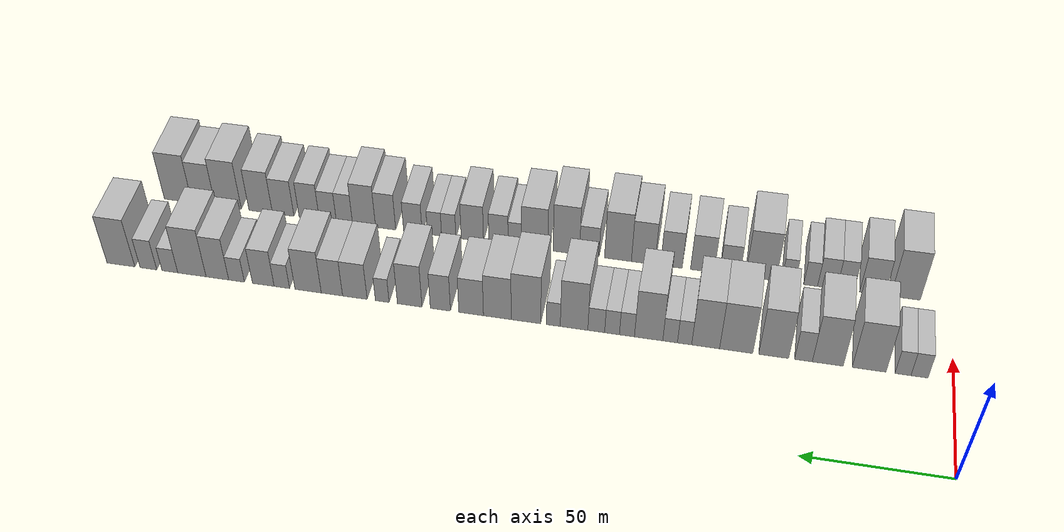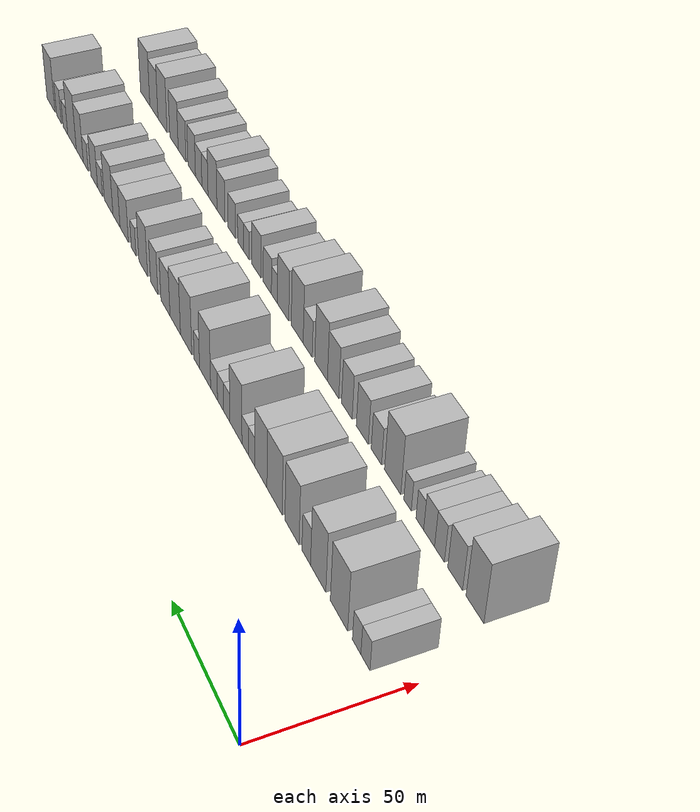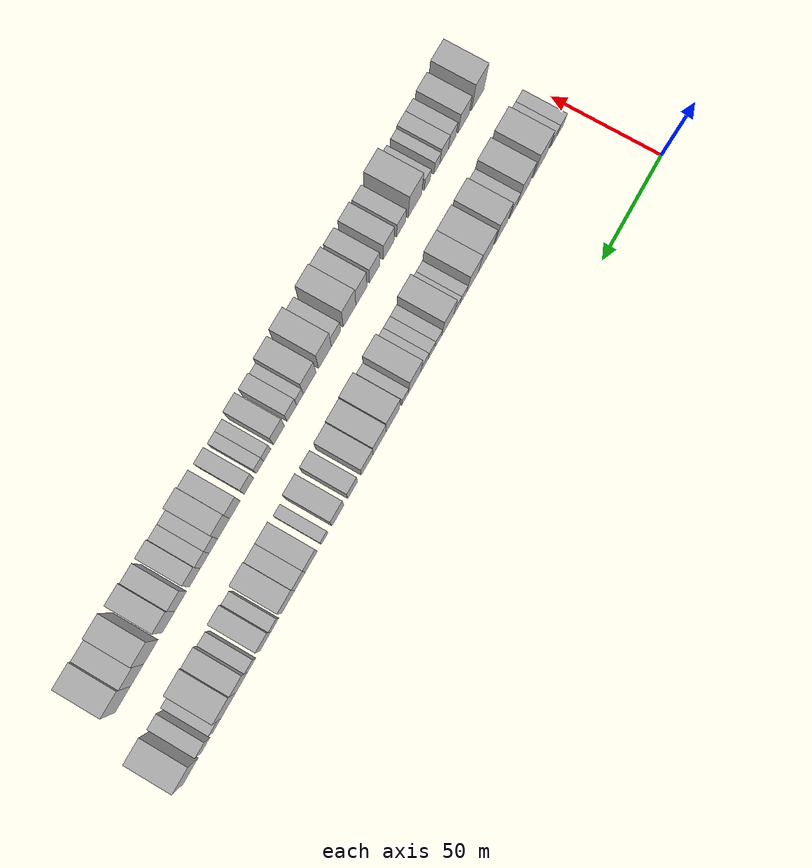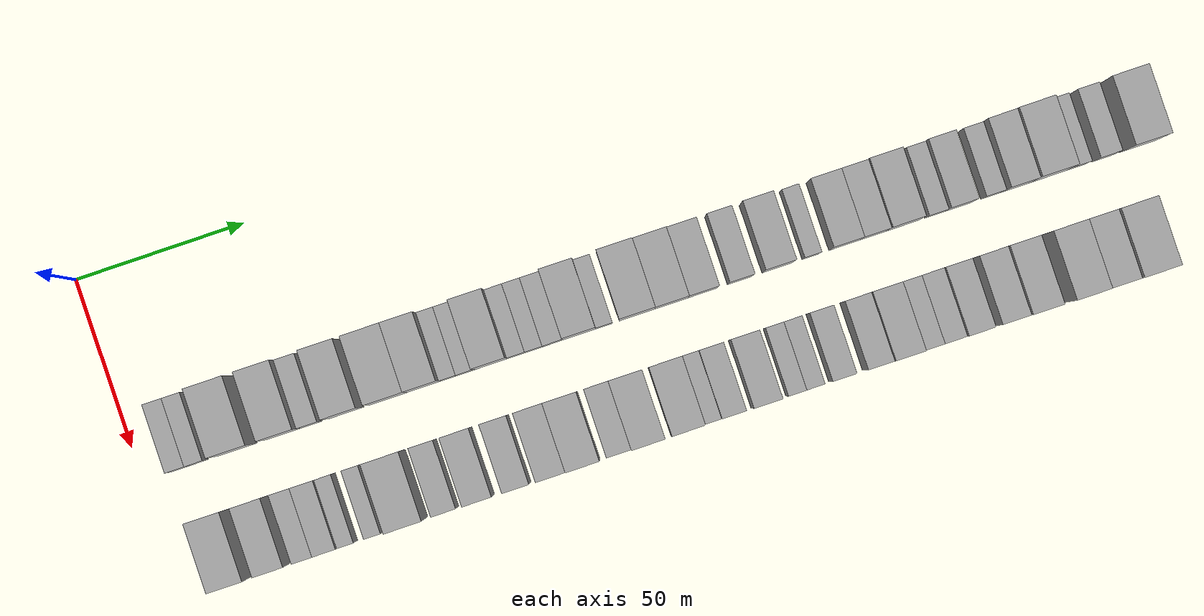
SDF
<sdf version="1.6">
 <world name="default">
  <model name="building_34">
   <static>1</static>
   <pose>50.0000 11.3781 0 0.000000 0.000000 0.000000</pose>
   <link name="link">
    <pose>0 0 6.00 0 0 0</pose>
    <collision name="collision"><geometry><box><size>20.0000 5.6528 12.0000</size></box></geometry></collision>
    <visual name="visual">
     <cast_shadows>0</cast_shadows>
     <geometry><box><size>20.0000 5.6528 12.0000</size></box></geometry>
     <material>
      <script>
       <uri>model://HANNAS_wall/materials/scripts</uri>
       <uri>model://HANNAS_wall/materials/textures</uri>
       <name>vrc/HANNAS_wall</name>
      </script>
     </material>
    </visual>
   </link>
  </model>
  <model name="building_35">
   <static>1</static>
   <pose>50.0000 16.8766 0 0.000000 0.000000 0.000000</pose>
   <link name="link">
    <pose>0 0 6.00 0 0 0</pose>
    <collision name="collision"><geometry><box><size>20.0000 5.3441 12.0000</size></box></geometry></collision>
    <visual name="visual">
     <cast_shadows>0</cast_shadows>
     <geometry><box><size>20.0000 5.3441 12.0000</size></box></geometry>
     <material>
      <script>
       <uri>model://HANNAS_wall/materials/scripts</uri>
       <uri>model://HANNAS_wall/materials/textures</uri>
       <name>vrc/HANNAS_wall</name>
      </script>
     </material>
    </visual>
   </link>
  </model>
  <model name="building_36">
   <static>1</static>
   <pose>50.0000 28.2322 0 0.000000 0.000000 0.000000</pose>
   <link name="link">
    <pose>0 0 12.00 0 0 0</pose>
    <collision name="collision"><geometry><box><size>20.0000 11.3671 24.0000</size></box></geometry></collision>
    <visual name="visual">
     <cast_shadows>0</cast_shadows>
     <geometry><box><size>20.0000 11.3671 24.0000</size></box></geometry>
     <material>
      <script>
       <uri>model://HANNAS_wall/materials/scripts</uri>
       <uri>model://HANNAS_wall/materials/textures</uri>
       <name>vrc/HANNAS_wall</name>
      </script>
     </material>
    </visual>
   </link>
  </model>
  <model name="building_37">
   <static>1</static>
   <pose>50.0000 42.1491 0 0.000000 0.000000 0.000000</pose>
   <link name="link">
    <pose>0 0 12.00 0 0 0</pose>
    <collision name="collision"><geometry><box><size>20.0000 10.4667 24.0000</size></box></geometry></collision>
    <visual name="visual">
     <cast_shadows>0</cast_shadows>
     <geometry><box><size>20.0000 10.4667 24.0000</size></box></geometry>
     <material>
      <script>
       <uri>model://HANNAS_wall/materials/scripts</uri>
       <uri>model://HANNAS_wall/materials/textures</uri>
       <name>vrc/HANNAS_wall</name>
      </script>
     </material>
    </visual>
   </link>
  </model>
  <model name="building_38">
   <static>1</static>
   <pose>50.0000 50.3869 0 0.000000 0.000000 0.000000</pose>
   <link name="link">
    <pose>0 0 7.50 0 0 0</pose>
    <collision name="collision"><geometry><box><size>20.0000 6.0088 15.0000</size></box></geometry></collision>
    <visual name="visual">
     <cast_shadows>0</cast_shadows>
     <geometry><box><size>20.0000 6.0088 15.0000</size></box></geometry>
     <material>
      <script>
       <uri>model://HANNAS_wall/materials/scripts</uri>
       <uri>model://HANNAS_wall/materials/textures</uri>
       <name>vrc/HANNAS_wall</name>
      </script>
     </material>
    </visual>
   </link>
  </model>
  <model name="building_39">
   <static>1</static>
   <pose>50.0000 60.5016 0 0.000000 0.000000 0.000000</pose>
   <link name="link">
    <pose>0 0 12.00 0 0 0</pose>
    <collision name="collision"><geometry><box><size>20.0000 10.2207 24.0000</size></box></geometry></collision>
    <visual name="visual">
     <cast_shadows>0</cast_shadows>
     <geometry><box><size>20.0000 10.2207 24.0000</size></box></geometry>
     <material>
      <script>
       <uri>model://HANNAS_wall/materials/scripts</uri>
       <uri>model://HANNAS_wall/materials/textures</uri>
       <name>vrc/HANNAS_wall</name>
      </script>
     </material>
    </visual>
   </link>
  </model>
  <model name="building_40">
   <static>1</static>
   <pose>50.0000 73.3194 0 0.000000 0.000000 0.000000</pose>
   <link name="link">
    <pose>0 0 12.00 0 0 0</pose>
    <collision name="collision"><geometry><box><size>20.0000 11.4149 24.0000</size></box></geometry></collision>
    <visual name="visual">
     <cast_shadows>0</cast_shadows>
     <geometry><box><size>20.0000 11.4149 24.0000</size></box></geometry>
     <material>
      <script>
       <uri>model://HANNAS_wall/materials/scripts</uri>
       <uri>model://HANNAS_wall/materials/textures</uri>
       <name>vrc/HANNAS_wall</name>
      </script>
     </material>
    </visual>
   </link>
  </model>
  <model name="building_41">
   <static>1</static>
   <pose>50.0000 83.8355 0 0.000000 0.000000 0.000000</pose>
   <link name="link">
    <pose>0 0 12.00 0 0 0</pose>
    <collision name="collision"><geometry><box><size>20.0000 9.6173 24.0000</size></box></geometry></collision>
    <visual name="visual">
     <cast_shadows>0</cast_shadows>
     <geometry><box><size>20.0000 9.6173 24.0000</size></box></geometry>
     <material>
      <script>
       <uri>model://HANNAS_wall/materials/scripts</uri>
       <uri>model://HANNAS_wall/materials/textures</uri>
       <name>vrc/HANNAS_wall</name>
      </script>
     </material>
    </visual>
   </link>
  </model>
  <model name="building_42">
   <static>1</static>
   <pose>50.0000 91.1085 0 0.000000 0.000000 0.000000</pose>
   <link name="link">
    <pose>0 0 6.00 0 0 0</pose>
    <collision name="collision"><geometry><box><size>20.0000 4.9288 12.0000</size></box></geometry></collision>
    <visual name="visual">
     <cast_shadows>0</cast_shadows>
     <geometry><box><size>20.0000 4.9288 12.0000</size></box></geometry>
     <material>
      <script>
       <uri>model://HANNAS_wall/materials/scripts</uri>
       <uri>model://HANNAS_wall/materials/textures</uri>
       <name>vrc/HANNAS_wall</name>
      </script>
     </material>
    </visual>
   </link>
  </model>
  <model name="building_43">
   <static>1</static>
   <pose>50.0000 96.1095 0 0.000000 0.000000 0.000000</pose>
   <link name="link">
    <pose>0 0 6.00 0 0 0</pose>
    <collision name="collision"><geometry><box><size>20.0000 5.0732 12.0000</size></box></geometry></collision>
    <visual name="visual">
     <cast_shadows>0</cast_shadows>
     <geometry><box><size>20.0000 5.0732 12.0000</size></box></geometry>
     <material>
      <script>
       <uri>model://HANNAS_wall/materials/scripts</uri>
       <uri>model://HANNAS_wall/materials/textures</uri>
       <name>vrc/HANNAS_wall</name>
      </script>
     </material>
    </visual>
   </link>
  </model>
  <model name="building_44">
   <static>1</static>
   <pose>50.0000 103.5776 0 0.000000 0.000000 0.000000</pose>
   <link name="link">
    <pose>0 0 12.00 0 0 0</pose>
    <collision name="collision"><geometry><box><size>20.0000 9.8629 24.0000</size></box></geometry></collision>
    <visual name="visual">
     <cast_shadows>0</cast_shadows>
     <geometry><box><size>20.0000 9.8629 24.0000</size></box></geometry>
     <material>
      <script>
       <uri>model://HANNAS_wall/materials/scripts</uri>
       <uri>model://HANNAS_wall/materials/textures</uri>
       <name>vrc/HANNAS_wall</name>
      </script>
     </material>
    </visual>
   </link>
  </model>
  <model name="building_45">
   <static>1</static>
   <pose>50.0000 111.1293 0 0.000000 0.000000 0.000000</pose>
   <link name="link">
    <pose>0 0 6.00 0 0 0</pose>
    <collision name="collision"><geometry><box><size>20.0000 5.2404 12.0000</size></box></geometry></collision>
    <visual name="visual">
     <cast_shadows>0</cast_shadows>
     <geometry><box><size>20.0000 5.2404 12.0000</size></box></geometry>
     <material>
      <script>
       <uri>model://HANNAS_wall/materials/scripts</uri>
       <uri>model://HANNAS_wall/materials/textures</uri>
       <name>vrc/HANNAS_wall</name>
      </script>
     </material>
    </visual>
   </link>
  </model>
  <model name="building_46">
   <static>1</static>
   <pose>50.0000 116.3357 0 0.000000 0.000000 0.000000</pose>
   <link name="link">
    <pose>0 0 6.00 0 0 0</pose>
    <collision name="collision"><geometry><box><size>20.0000 5.1725 12.0000</size></box></geometry></collision>
    <visual name="visual">
     <cast_shadows>0</cast_shadows>
     <geometry><box><size>20.0000 5.1725 12.0000</size></box></geometry>
     <material>
      <script>
       <uri>model://HANNAS_wall/materials/scripts</uri>
       <uri>model://HANNAS_wall/materials/textures</uri>
       <name>vrc/HANNAS_wall</name>
      </script>
     </material>
    </visual>
   </link>
  </model>
  <model name="building_47">
   <static>1</static>
   <pose>50.0000 121.8743 0 0.000000 0.000000 0.000000</pose>
   <link name="link">
    <pose>0 0 6.00 0 0 0</pose>
    <collision name="collision"><geometry><box><size>20.0000 5.9047 12.0000</size></box></geometry></collision>
    <visual name="visual">
     <cast_shadows>0</cast_shadows>
     <geometry><box><size>20.0000 5.9047 12.0000</size></box></geometry>
     <material>
      <script>
       <uri>model://HANNAS_wall/materials/scripts</uri>
       <uri>model://HANNAS_wall/materials/textures</uri>
       <name>vrc/HANNAS_wall</name>
      </script>
     </material>
    </visual>
   </link>
  </model>
  <model name="building_48">
   <static>1</static>
   <pose>50.0000 129.6928 0 0.000000 0.000000 0.000000</pose>
   <link name="link">
    <pose>0 0 12.00 0 0 0</pose>
    <collision name="collision"><geometry><box><size>20.0000 9.7323 24.0000</size></box></geometry></collision>
    <visual name="visual">
     <cast_shadows>0</cast_shadows>
     <geometry><box><size>20.0000 9.7323 24.0000</size></box></geometry>
     <material>
      <script>
       <uri>model://HANNAS_wall/materials/scripts</uri>
       <uri>model://HANNAS_wall/materials/textures</uri>
       <name>vrc/HANNAS_wall</name>
      </script>
     </material>
    </visual>
   </link>
  </model>
  <model name="building_49">
   <static>1</static>
   <pose>50.0000 137.0227 0 0.000000 0.000000 0.000000</pose>
   <link name="link">
    <pose>0 0 6.00 0 0 0</pose>
    <collision name="collision"><geometry><box><size>20.0000 4.9277 12.0000</size></box></geometry></collision>
    <visual name="visual">
     <cast_shadows>0</cast_shadows>
     <geometry><box><size>20.0000 4.9277 12.0000</size></box></geometry>
     <material>
      <script>
       <uri>model://HANNAS_wall/materials/scripts</uri>
       <uri>model://HANNAS_wall/materials/textures</uri>
       <name>vrc/HANNAS_wall</name>
      </script>
     </material>
    </visual>
   </link>
  </model>
  <model name="building_50">
   <static>1</static>
   <pose>50.0000 146.7251 0 0.000000 0.000000 0.000000</pose>
   <link name="link">
    <pose>0 0 12.00 0 0 0</pose>
    <collision name="collision"><geometry><box><size>20.0000 10.4770 24.0000</size></box></geometry></collision>
    <visual name="visual">
     <cast_shadows>0</cast_shadows>
     <geometry><box><size>20.0000 10.4770 24.0000</size></box></geometry>
     <material>
      <script>
       <uri>model://HANNAS_wall/materials/scripts</uri>
       <uri>model://HANNAS_wall/materials/textures</uri>
       <name>vrc/HANNAS_wall</name>
      </script>
     </material>
    </visual>
   </link>
  </model>
  <model name="building_51">
   <static>1</static>
   <pose>50.0000 156.9101 0 0.000000 0.000000 0.000000</pose>
   <link name="link">
    <pose>0 0 10.50 0 0 0</pose>
    <collision name="collision"><geometry><box><size>20.0000 9.8931 21.0000</size></box></geometry></collision>
    <visual name="visual">
     <cast_shadows>0</cast_shadows>
     <geometry><box><size>20.0000 9.8931 21.0000</size></box></geometry>
     <material>
      <script>
       <uri>model://HANNAS_wall/materials/scripts</uri>
       <uri>model://HANNAS_wall/materials/textures</uri>
       <name>vrc/HANNAS_wall</name>
      </script>
     </material>
    </visual>
   </link>
  </model>
  <model name="building_52">
   <static>1</static>
   <pose>50.0000 166.2737 0 0.000000 0.000000 0.000000</pose>
   <link name="link">
    <pose>0 0 9.00 0 0 0</pose>
    <collision name="collision"><geometry><box><size>20.0000 8.8340 18.0000</size></box></geometry></collision>
    <visual name="visual">
     <cast_shadows>0</cast_shadows>
     <geometry><box><size>20.0000 8.8340 18.0000</size></box></geometry>
     <material>
      <script>
       <uri>model://HANNAS_wall/materials/scripts</uri>
       <uri>model://HANNAS_wall/materials/textures</uri>
       <name>vrc/HANNAS_wall</name>
      </script>
     </material>
    </visual>
   </link>
  </model>
  <model name="building_53">
   <static>1</static>
   <pose>50.0000 177.3260 0 0.000000 0.000000 0.000000</pose>
   <link name="link">
    <pose>0 0 9.00 0 0 0</pose>
    <collision name="collision"><geometry><box><size>20.0000 7.2707 18.0000</size></box></geometry></collision>
    <visual name="visual">
     <cast_shadows>0</cast_shadows>
     <geometry><box><size>20.0000 7.2707 18.0000</size></box></geometry>
     <material>
      <script>
       <uri>model://HANNAS_wall/materials/scripts</uri>
       <uri>model://HANNAS_wall/materials/textures</uri>
       <name>vrc/HANNAS_wall</name>
      </script>
     </material>
    </visual>
   </link>
  </model>
  <model name="building_54">
   <static>1</static>
   <pose>50.0000 188.4269 0 0.000000 0.000000 0.000000</pose>
   <link name="link">
    <pose>0 0 10.50 0 0 0</pose>
    <collision name="collision"><geometry><box><size>20.0000 8.9310 21.0000</size></box></geometry></collision>
    <visual name="visual">
     <cast_shadows>0</cast_shadows>
     <geometry><box><size>20.0000 8.9310 21.0000</size></box></geometry>
     <material>
      <script>
       <uri>model://HANNAS_wall/materials/scripts</uri>
       <uri>model://HANNAS_wall/materials/textures</uri>
       <name>vrc/HANNAS_wall</name>
      </script>
     </material>
    </visual>
   </link>
  </model>
  <model name="building_55">
   <static>1</static>
   <pose>50.0000 198.3898 0 0.000000 0.000000 0.000000</pose>
   <link name="link">
    <pose>0 0 6.00 0 0 0</pose>
    <collision name="collision"><geometry><box><size>20.0000 4.9948 12.0000</size></box></geometry></collision>
    <visual name="visual">
     <cast_shadows>0</cast_shadows>
     <geometry><box><size>20.0000 4.9948 12.0000</size></box></geometry>
     <material>
      <script>
       <uri>model://HANNAS_wall/materials/scripts</uri>
       <uri>model://HANNAS_wall/materials/textures</uri>
       <name>vrc/HANNAS_wall</name>
      </script>
     </material>
    </visual>
   </link>
  </model>
  <model name="building_56">
   <static>1</static>
   <pose>50.0000 208.3783 0 0.000000 0.000000 0.000000</pose>
   <link name="link">
    <pose>0 0 9.00 0 0 0</pose>
    <collision name="collision"><geometry><box><size>20.0000 8.9823 18.0000</size></box></geometry></collision>
    <visual name="visual">
     <cast_shadows>0</cast_shadows>
     <geometry><box><size>20.0000 8.9823 18.0000</size></box></geometry>
     <material>
      <script>
       <uri>model://HANNAS_wall/materials/scripts</uri>
       <uri>model://HANNAS_wall/materials/textures</uri>
       <name>vrc/HANNAS_wall</name>
      </script>
     </material>
    </visual>
   </link>
  </model>
  <model name="building_57">
   <static>1</static>
   <pose>50.0000 216.7896 0 0.000000 0.000000 0.000000</pose>
   <link name="link">
    <pose>0 0 9.00 0 0 0</pose>
    <collision name="collision"><geometry><box><size>20.0000 7.8402 18.0000</size></box></geometry></collision>
    <visual name="visual">
     <cast_shadows>0</cast_shadows>
     <geometry><box><size>20.0000 7.8402 18.0000</size></box></geometry>
     <material>
      <script>
       <uri>model://HANNAS_wall/materials/scripts</uri>
       <uri>model://HANNAS_wall/materials/textures</uri>
       <name>vrc/HANNAS_wall</name>
      </script>
     </material>
    </visual>
   </link>
  </model>
  <model name="building_58">
   <static>1</static>
   <pose>50.0000 225.5620 0 0.000000 0.000000 0.000000</pose>
   <link name="link">
    <pose>0 0 10.50 0 0 0</pose>
    <collision name="collision"><geometry><box><size>20.0000 9.7047 21.0000</size></box></geometry></collision>
    <visual name="visual">
     <cast_shadows>0</cast_shadows>
     <geometry><box><size>20.0000 9.7047 21.0000</size></box></geometry>
     <material>
      <script>
       <uri>model://HANNAS_wall/materials/scripts</uri>
       <uri>model://HANNAS_wall/materials/textures</uri>
       <name>vrc/HANNAS_wall</name>
      </script>
     </material>
    </visual>
   </link>
  </model>
  <model name="building_59">
   <static>1</static>
   <pose>50.0000 235.2717 0 0.000000 0.000000 0.000000</pose>
   <link name="link">
    <pose>0 0 6.00 0 0 0</pose>
    <collision name="collision"><geometry><box><size>20.0000 5.7147 12.0000</size></box></geometry></collision>
    <visual name="visual">
     <cast_shadows>0</cast_shadows>
     <geometry><box><size>20.0000 5.7147 12.0000</size></box></geometry>
     <material>
      <script>
       <uri>model://HANNAS_wall/materials/scripts</uri>
       <uri>model://HANNAS_wall/materials/textures</uri>
       <name>vrc/HANNAS_wall</name>
      </script>
     </material>
    </visual>
   </link>
  </model>
  <model name="building_60">
   <static>1</static>
   <pose>50.0000 242.1618 0 0.000000 0.000000 0.000000</pose>
   <link name="link">
    <pose>0 0 9.00 0 0 0</pose>
    <collision name="collision"><geometry><box><size>20.0000 8.0655 18.0000</size></box></geometry></collision>
    <visual name="visual">
     <cast_shadows>0</cast_shadows>
     <geometry><box><size>20.0000 8.0655 18.0000</size></box></geometry>
     <material>
      <script>
       <uri>model://HANNAS_wall/materials/scripts</uri>
       <uri>model://HANNAS_wall/materials/textures</uri>
       <name>vrc/HANNAS_wall</name>
      </script>
     </material>
    </visual>
   </link>
  </model>
  <model name="building_61">
   <static>1</static>
   <pose>50.0000 252.1218 0 0.000000 0.000000 0.000000</pose>
   <link name="link">
    <pose>0 0 6.00 0 0 0</pose>
    <collision name="collision"><geometry><box><size>20.0000 5.8545 12.0000</size></box></geometry></collision>
    <visual name="visual">
     <cast_shadows>0</cast_shadows>
     <geometry><box><size>20.0000 5.8545 12.0000</size></box></geometry>
     <material>
      <script>
       <uri>model://HANNAS_wall/materials/scripts</uri>
       <uri>model://HANNAS_wall/materials/textures</uri>
       <name>vrc/HANNAS_wall</name>
      </script>
     </material>
    </visual>
   </link>
  </model>
  <model name="building_62">
   <static>1</static>
   <pose>50.0000 259.2946 0 0.000000 0.000000 0.000000</pose>
   <link name="link">
    <pose>0 0 10.50 0 0 0</pose>
    <collision name="collision"><geometry><box><size>20.0000 8.4913 21.0000</size></box></geometry></collision>
    <visual name="visual">
     <cast_shadows>0</cast_shadows>
     <geometry><box><size>20.0000 8.4913 21.0000</size></box></geometry>
     <material>
      <script>
       <uri>model://HANNAS_wall/materials/scripts</uri>
       <uri>model://HANNAS_wall/materials/textures</uri>
       <name>vrc/HANNAS_wall</name>
      </script>
     </material>
    </visual>
   </link>
  </model>
  <model name="building_63">
   <static>1</static>
   <pose>50.0000 268.8690 0 0.000000 0.000000 0.000000</pose>
   <link name="link">
    <pose>0 0 12.00 0 0 0</pose>
    <collision name="collision"><geometry><box><size>20.0000 10.6575 24.0000</size></box></geometry></collision>
    <visual name="visual">
     <cast_shadows>0</cast_shadows>
     <geometry><box><size>20.0000 10.6575 24.0000</size></box></geometry>
     <material>
      <script>
       <uri>model://HANNAS_wall/materials/scripts</uri>
       <uri>model://HANNAS_wall/materials/textures</uri>
       <name>vrc/HANNAS_wall</name>
      </script>
     </material>
    </visual>
   </link>
  </model>
  <model name="building_64">
   <static>1</static>
   <pose>50.0000 277.1738 0 0.000000 0.000000 0.000000</pose>
   <link name="link">
    <pose>0 0 6.00 0 0 0</pose>
    <collision name="collision"><geometry><box><size>20.0000 5.9520 12.0000</size></box></geometry></collision>
    <visual name="visual">
     <cast_shadows>0</cast_shadows>
     <geometry><box><size>20.0000 5.9520 12.0000</size></box></geometry>
     <material>
      <script>
       <uri>model://HANNAS_wall/materials/scripts</uri>
       <uri>model://HANNAS_wall/materials/textures</uri>
       <name>vrc/HANNAS_wall</name>
      </script>
     </material>
    </visual>
   </link>
  </model>
  <model name="building_65">
   <static>1</static>
   <pose>50.0000 285.3070 0 0.000000 0.000000 0.000000</pose>
   <link name="link">
    <pose>0 0 7.50 0 0 0</pose>
    <collision name="collision"><geometry><box><size>20.0000 6.3145 15.0000</size></box></geometry></collision>
    <visual name="visual">
     <cast_shadows>0</cast_shadows>
     <geometry><box><size>20.0000 6.3145 15.0000</size></box></geometry>
     <material>
      <script>
       <uri>model://HANNAS_wall/materials/scripts</uri>
       <uri>model://HANNAS_wall/materials/textures</uri>
       <name>vrc/HANNAS_wall</name>
      </script>
     </material>
    </visual>
   </link>
  </model>
  <model name="building_66">
   <static>1</static>
   <pose>50.0000 295.7651 0 0.000000 0.000000 0.000000</pose>
   <link name="link">
    <pose>0 0 12.00 0 0 0</pose>
    <collision name="collision"><geometry><box><size>20.0000 10.6016 24.0000</size></box></geometry></collision>
    <visual name="visual">
     <cast_shadows>0</cast_shadows>
     <geometry><box><size>20.0000 10.6016 24.0000</size></box></geometry>
     <material>
      <script>
       <uri>model://HANNAS_wall/materials/scripts</uri>
       <uri>model://HANNAS_wall/materials/textures</uri>
       <name>vrc/HANNAS_wall</name>
      </script>
     </material>
    </visual>
   </link>
  </model>
  <model name="building_98">
   <static>1</static>
   <pose>85.0000 16.2020 0 0.000000 0.000000 0.000000</pose>
   <link name="link">
    <pose>0 0 12.00 0 0 0</pose>
    <collision name="collision"><geometry><box><size>20.0000 10.3148 24.0000</size></box></geometry></collision>
    <visual name="visual">
     <cast_shadows>0</cast_shadows>
     <geometry><box><size>20.0000 10.3148 24.0000</size></box></geometry>
     <material>
      <script>
       <uri>model://HANNAS_wall/materials/scripts</uri>
       <uri>model://HANNAS_wall/materials/textures</uri>
       <name>vrc/HANNAS_wall</name>
      </script>
     </material>
    </visual>
   </link>
  </model>
  <model name="building_99">
   <static>1</static>
   <pose>85.0000 27.8153 0 0.000000 0.000000 0.000000</pose>
   <link name="link">
    <pose>0 0 9.00 0 0 0</pose>
    <collision name="collision"><geometry><box><size>20.0000 8.9116 18.0000</size></box></geometry></collision>
    <visual name="visual">
     <cast_shadows>0</cast_shadows>
     <geometry><box><size>20.0000 8.9116 18.0000</size></box></geometry>
     <material>
      <script>
       <uri>model://HANNAS_wall/materials/scripts</uri>
       <uri>model://HANNAS_wall/materials/textures</uri>
       <name>vrc/HANNAS_wall</name>
      </script>
     </material>
    </visual>
   </link>
  </model>
  <model name="building_100">
   <static>1</static>
   <pose>85.0000 37.2884 0 0.000000 0.000000 0.000000</pose>
   <link name="link">
    <pose>0 0 7.50 0 0 0</pose>
    <collision name="collision"><geometry><box><size>20.0000 6.0346 15.0000</size></box></geometry></collision>
    <visual name="visual">
     <cast_shadows>0</cast_shadows>
     <geometry><box><size>20.0000 6.0346 15.0000</size></box></geometry>
     <material>
      <script>
       <uri>model://HANNAS_wall/materials/scripts</uri>
       <uri>model://HANNAS_wall/materials/textures</uri>
       <name>vrc/HANNAS_wall</name>
      </script>
     </material>
    </visual>
   </link>
  </model>
  <model name="building_101">
   <static>1</static>
   <pose>85.0000 43.7230 0 0.000000 0.000000 0.000000</pose>
   <link name="link">
    <pose>0 0 7.50 0 0 0</pose>
    <collision name="collision"><geometry><box><size>20.0000 6.8346 15.0000</size></box></geometry></collision>
    <visual name="visual">
     <cast_shadows>0</cast_shadows>
     <geometry><box><size>20.0000 6.8346 15.0000</size></box></geometry>
     <material>
      <script>
       <uri>model://HANNAS_wall/materials/scripts</uri>
       <uri>model://HANNAS_wall/materials/textures</uri>
       <name>vrc/HANNAS_wall</name>
      </script>
     </material>
    </visual>
   </link>
  </model>
  <model name="building_102">
   <static>1</static>
   <pose>85.0000 49.5884 0 0.000000 0.000000 0.000000</pose>
   <link name="link">
    <pose>0 0 6.00 0 0 0</pose>
    <collision name="collision"><geometry><box><size>20.0000 4.8964 12.0000</size></box></geometry></collision>
    <visual name="visual">
     <cast_shadows>0</cast_shadows>
     <geometry><box><size>20.0000 4.8964 12.0000</size></box></geometry>
     <material>
      <script>
       <uri>model://HANNAS_wall/materials/scripts</uri>
       <uri>model://HANNAS_wall/materials/textures</uri>
       <name>vrc/HANNAS_wall</name>
      </script>
     </material>
    </visual>
   </link>
  </model>
  <model name="building_103">
   <static>1</static>
   <pose>85.0000 57.4824 0 0.000000 0.000000 0.000000</pose>
   <link name="link">
    <pose>0 0 6.00 0 0 0</pose>
    <collision name="collision"><geometry><box><size>20.0000 4.8916 12.0000</size></box></geometry></collision>
    <visual name="visual">
     <cast_shadows>0</cast_shadows>
     <geometry><box><size>20.0000 4.8916 12.0000</size></box></geometry>
     <material>
      <script>
       <uri>model://HANNAS_wall/materials/scripts</uri>
       <uri>model://HANNAS_wall/materials/textures</uri>
       <name>vrc/HANNAS_wall</name>
      </script>
     </material>
    </visual>
   </link>
  </model>
  <model name="building_104">
   <static>1</static>
   <pose>85.0000 67.3909 0 0.000000 0.000000 0.000000</pose>
   <link name="link">
    <pose>0 0 12.00 0 0 0</pose>
    <collision name="collision"><geometry><box><size>20.0000 10.9254 24.0000</size></box></geometry></collision>
    <visual name="visual">
     <cast_shadows>0</cast_shadows>
     <geometry><box><size>20.0000 10.9254 24.0000</size></box></geometry>
     <material>
      <script>
       <uri>model://HANNAS_wall/materials/scripts</uri>
       <uri>model://HANNAS_wall/materials/textures</uri>
       <name>vrc/HANNAS_wall</name>
      </script>
     </material>
    </visual>
   </link>
  </model>
  <model name="building_105">
   <static>1</static>
   <pose>85.0000 78.4646 0 0.000000 0.000000 0.000000</pose>
   <link name="link">
    <pose>0 0 7.50 0 0 0</pose>
    <collision name="collision"><geometry><box><size>20.0000 7.2220 15.0000</size></box></geometry></collision>
    <visual name="visual">
     <cast_shadows>0</cast_shadows>
     <geometry><box><size>20.0000 7.2220 15.0000</size></box></geometry>
     <material>
      <script>
       <uri>model://HANNAS_wall/materials/scripts</uri>
       <uri>model://HANNAS_wall/materials/textures</uri>
       <name>vrc/HANNAS_wall</name>
      </script>
     </material>
    </visual>
   </link>
  </model>
  <model name="building_106">
   <static>1</static>
   <pose>85.0000 88.3648 0 0.000000 0.000000 0.000000</pose>
   <link name="link">
    <pose>0 0 9.00 0 0 0</pose>
    <collision name="collision"><geometry><box><size>20.0000 8.5785 18.0000</size></box></geometry></collision>
    <visual name="visual">
     <cast_shadows>0</cast_shadows>
     <geometry><box><size>20.0000 8.5785 18.0000</size></box></geometry>
     <material>
      <script>
       <uri>model://HANNAS_wall/materials/scripts</uri>
       <uri>model://HANNAS_wall/materials/textures</uri>
       <name>vrc/HANNAS_wall</name>
      </script>
     </material>
    </visual>
   </link>
  </model>
  <model name="building_107">
   <static>1</static>
   <pose>85.0000 99.5884 0 0.000000 0.000000 0.000000</pose>
   <link name="link">
    <pose>0 0 9.00 0 0 0</pose>
    <collision name="collision"><geometry><box><size>20.0000 7.8687 18.0000</size></box></geometry></collision>
    <visual name="visual">
     <cast_shadows>0</cast_shadows>
     <geometry><box><size>20.0000 7.8687 18.0000</size></box></geometry>
     <material>
      <script>
       <uri>model://HANNAS_wall/materials/scripts</uri>
       <uri>model://HANNAS_wall/materials/textures</uri>
       <name>vrc/HANNAS_wall</name>
      </script>
     </material>
    </visual>
   </link>
  </model>
  <model name="building_108">
   <static>1</static>
   <pose>85.0000 109.8378 0 0.000000 0.000000 0.000000</pose>
   <link name="link">
    <pose>0 0 10.50 0 0 0</pose>
    <collision name="collision"><geometry><box><size>20.0000 8.6301 21.0000</size></box></geometry></collision>
    <visual name="visual">
     <cast_shadows>0</cast_shadows>
     <geometry><box><size>20.0000 8.6301 21.0000</size></box></geometry>
     <material>
      <script>
       <uri>model://HANNAS_wall/materials/scripts</uri>
       <uri>model://HANNAS_wall/materials/textures</uri>
       <name>vrc/HANNAS_wall</name>
      </script>
     </material>
    </visual>
   </link>
  </model>
  <model name="building_109">
   <static>1</static>
   <pose>85.0000 119.0690 0 0.000000 0.000000 0.000000</pose>
   <link name="link">
    <pose>0 0 12.00 0 0 0</pose>
    <collision name="collision"><geometry><box><size>20.0000 9.8322 24.0000</size></box></geometry></collision>
    <visual name="visual">
     <cast_shadows>0</cast_shadows>
     <geometry><box><size>20.0000 9.8322 24.0000</size></box></geometry>
     <material>
      <script>
       <uri>model://HANNAS_wall/materials/scripts</uri>
       <uri>model://HANNAS_wall/materials/textures</uri>
       <name>vrc/HANNAS_wall</name>
      </script>
     </material>
    </visual>
   </link>
  </model>
  <model name="building_110">
   <static>1</static>
   <pose>85.0000 129.5925 0 0.000000 0.000000 0.000000</pose>
   <link name="link">
    <pose>0 0 7.50 0 0 0</pose>
    <collision name="collision"><geometry><box><size>20.0000 7.2148 15.0000</size></box></geometry></collision>
    <visual name="visual">
     <cast_shadows>0</cast_shadows>
     <geometry><box><size>20.0000 7.2148 15.0000</size></box></geometry>
     <material>
      <script>
       <uri>model://HANNAS_wall/materials/scripts</uri>
       <uri>model://HANNAS_wall/materials/textures</uri>
       <name>vrc/HANNAS_wall</name>
      </script>
     </material>
    </visual>
   </link>
  </model>
  <model name="building_111">
   <static>1</static>
   <pose>85.0000 138.0838 0 0.000000 0.000000 0.000000</pose>
   <link name="link">
    <pose>0 0 12.00 0 0 0</pose>
    <collision name="collision"><geometry><box><size>20.0000 9.7677 24.0000</size></box></geometry></collision>
    <visual name="visual">
     <cast_shadows>0</cast_shadows>
     <geometry><box><size>20.0000 9.7677 24.0000</size></box></geometry>
     <material>
      <script>
       <uri>model://HANNAS_wall/materials/scripts</uri>
       <uri>model://HANNAS_wall/materials/textures</uri>
       <name>vrc/HANNAS_wall</name>
      </script>
     </material>
    </visual>
   </link>
  </model>
  <model name="building_112">
   <static>1</static>
   <pose>85.0000 149.8265 0 0.000000 0.000000 0.000000</pose>
   <link name="link">
    <pose>0 0 10.50 0 0 0</pose>
    <collision name="collision"><geometry><box><size>20.0000 9.7176 21.0000</size></box></geometry></collision>
    <visual name="visual">
     <cast_shadows>0</cast_shadows>
     <geometry><box><size>20.0000 9.7176 21.0000</size></box></geometry>
     <material>
      <script>
       <uri>model://HANNAS_wall/materials/scripts</uri>
       <uri>model://HANNAS_wall/materials/textures</uri>
       <name>vrc/HANNAS_wall</name>
      </script>
     </material>
    </visual>
   </link>
  </model>
  <model name="building_113">
   <static>1</static>
   <pose>85.0000 157.1970 0 0.000000 0.000000 0.000000</pose>
   <link name="link">
    <pose>0 0 6.00 0 0 0</pose>
    <collision name="collision"><geometry><box><size>20.0000 5.0234 12.0000</size></box></geometry></collision>
    <visual name="visual">
     <cast_shadows>0</cast_shadows>
     <geometry><box><size>20.0000 5.0234 12.0000</size></box></geometry>
     <material>
      <script>
       <uri>model://HANNAS_wall/materials/scripts</uri>
       <uri>model://HANNAS_wall/materials/textures</uri>
       <name>vrc/HANNAS_wall</name>
      </script>
     </material>
    </visual>
   </link>
  </model>
  <model name="building_114">
   <static>1</static>
   <pose>85.0000 163.2944 0 0.000000 0.000000 0.000000</pose>
   <link name="link">
    <pose>0 0 7.50 0 0 0</pose>
    <collision name="collision"><geometry><box><size>20.0000 7.1714 15.0000</size></box></geometry></collision>
    <visual name="visual">
     <cast_shadows>0</cast_shadows>
     <geometry><box><size>20.0000 7.1714 15.0000</size></box></geometry>
     <material>
      <script>
       <uri>model://HANNAS_wall/materials/scripts</uri>
       <uri>model://HANNAS_wall/materials/textures</uri>
       <name>vrc/HANNAS_wall</name>
      </script>
     </material>
    </visual>
   </link>
  </model>
  <model name="building_115">
   <static>1</static>
   <pose>85.0000 173.0663 0 0.000000 0.000000 0.000000</pose>
   <link name="link">
    <pose>0 0 9.00 0 0 0</pose>
    <collision name="collision"><geometry><box><size>20.0000 8.3724 18.0000</size></box></geometry></collision>
    <visual name="visual">
     <cast_shadows>0</cast_shadows>
     <geometry><box><size>20.0000 8.3724 18.0000</size></box></geometry>
     <material>
      <script>
       <uri>model://HANNAS_wall/materials/scripts</uri>
       <uri>model://HANNAS_wall/materials/textures</uri>
       <name>vrc/HANNAS_wall</name>
      </script>
     </material>
    </visual>
   </link>
  </model>
  <model name="building_116">
   <static>1</static>
   <pose>85.0000 181.9499 0 0.000000 0.000000 0.000000</pose>
   <link name="link">
    <pose>0 0 6.00 0 0 0</pose>
    <collision name="collision"><geometry><box><size>20.0000 5.3946 12.0000</size></box></geometry></collision>
    <visual name="visual">
     <cast_shadows>0</cast_shadows>
     <geometry><box><size>20.0000 5.3946 12.0000</size></box></geometry>
     <material>
      <script>
       <uri>model://HANNAS_wall/materials/scripts</uri>
       <uri>model://HANNAS_wall/materials/textures</uri>
       <name>vrc/HANNAS_wall</name>
      </script>
     </material>
    </visual>
   </link>
  </model>
  <model name="building_117">
   <static>1</static>
   <pose>85.0000 187.3176 0 0.000000 0.000000 0.000000</pose>
   <link name="link">
    <pose>0 0 6.00 0 0 0</pose>
    <collision name="collision"><geometry><box><size>20.0000 5.3409 12.0000</size></box></geometry></collision>
    <visual name="visual">
     <cast_shadows>0</cast_shadows>
     <geometry><box><size>20.0000 5.3409 12.0000</size></box></geometry>
     <material>
      <script>
       <uri>model://HANNAS_wall/materials/scripts</uri>
       <uri>model://HANNAS_wall/materials/textures</uri>
       <name>vrc/HANNAS_wall</name>
      </script>
     </material>
    </visual>
   </link>
  </model>
  <model name="building_118">
   <static>1</static>
   <pose>85.0000 195.5135 0 0.000000 0.000000 0.000000</pose>
   <link name="link">
    <pose>0 0 7.50 0 0 0</pose>
    <collision name="collision"><geometry><box><size>20.0000 7.0508 15.0000</size></box></geometry></collision>
    <visual name="visual">
     <cast_shadows>0</cast_shadows>
     <geometry><box><size>20.0000 7.0508 15.0000</size></box></geometry>
     <material>
      <script>
       <uri>model://HANNAS_wall/materials/scripts</uri>
       <uri>model://HANNAS_wall/materials/textures</uri>
       <name>vrc/HANNAS_wall</name>
      </script>
     </material>
    </visual>
   </link>
  </model>
  <model name="building_119">
   <static>1</static>
   <pose>85.0000 205.8765 0 0.000000 0.000000 0.000000</pose>
   <link name="link">
    <pose>0 0 9.00 0 0 0</pose>
    <collision name="collision"><geometry><box><size>20.0000 7.6752 18.0000</size></box></geometry></collision>
    <visual name="visual">
     <cast_shadows>0</cast_shadows>
     <geometry><box><size>20.0000 7.6752 18.0000</size></box></geometry>
     <material>
      <script>
       <uri>model://HANNAS_wall/materials/scripts</uri>
       <uri>model://HANNAS_wall/materials/textures</uri>
       <name>vrc/HANNAS_wall</name>
      </script>
     </material>
    </visual>
   </link>
  </model>
  <model name="building_120">
   <static>1</static>
   <pose>85.0000 214.1072 0 0.000000 0.000000 0.000000</pose>
   <link name="link">
    <pose>0 0 10.50 0 0 0</pose>
    <collision name="collision"><geometry><box><size>20.0000 8.7861 21.0000</size></box></geometry></collision>
    <visual name="visual">
     <cast_shadows>0</cast_shadows>
     <geometry><box><size>20.0000 8.7861 21.0000</size></box></geometry>
     <material>
      <script>
       <uri>model://HANNAS_wall/materials/scripts</uri>
       <uri>model://HANNAS_wall/materials/textures</uri>
       <name>vrc/HANNAS_wall</name>
      </script>
     </material>
    </visual>
   </link>
  </model>
  <model name="building_121">
   <static>1</static>
   <pose>85.0000 221.6027 0 0.000000 0.000000 0.000000</pose>
   <link name="link">
    <pose>0 0 7.50 0 0 0</pose>
    <collision name="collision"><geometry><box><size>20.0000 6.2049 15.0000</size></box></geometry></collision>
    <visual name="visual">
     <cast_shadows>0</cast_shadows>
     <geometry><box><size>20.0000 6.2049 15.0000</size></box></geometry>
     <material>
      <script>
       <uri>model://HANNAS_wall/materials/scripts</uri>
       <uri>model://HANNAS_wall/materials/textures</uri>
       <name>vrc/HANNAS_wall</name>
      </script>
     </material>
    </visual>
   </link>
  </model>
  <model name="building_122">
   <static>1</static>
   <pose>85.0000 227.9924 0 0.000000 0.000000 0.000000</pose>
   <link name="link">
    <pose>0 0 7.50 0 0 0</pose>
    <collision name="collision"><geometry><box><size>20.0000 6.5745 15.0000</size></box></geometry></collision>
    <visual name="visual">
     <cast_shadows>0</cast_shadows>
     <geometry><box><size>20.0000 6.5745 15.0000</size></box></geometry>
     <material>
      <script>
       <uri>model://HANNAS_wall/materials/scripts</uri>
       <uri>model://HANNAS_wall/materials/textures</uri>
       <name>vrc/HANNAS_wall</name>
      </script>
     </material>
    </visual>
   </link>
  </model>
  <model name="building_123">
   <static>1</static>
   <pose>85.0000 235.1843 0 0.000000 0.000000 0.000000</pose>
   <link name="link">
    <pose>0 0 9.00 0 0 0</pose>
    <collision name="collision"><geometry><box><size>20.0000 7.8092 18.0000</size></box></geometry></collision>
    <visual name="visual">
     <cast_shadows>0</cast_shadows>
     <geometry><box><size>20.0000 7.8092 18.0000</size></box></geometry>
     <material>
      <script>
       <uri>model://HANNAS_wall/materials/scripts</uri>
       <uri>model://HANNAS_wall/materials/textures</uri>
       <name>vrc/HANNAS_wall</name>
      </script>
     </material>
    </visual>
   </link>
  </model>
  <model name="building_124">
   <static>1</static>
   <pose>85.0000 245.2661 0 0.000000 0.000000 0.000000</pose>
   <link name="link">
    <pose>0 0 9.00 0 0 0</pose>
    <collision name="collision"><geometry><box><size>20.0000 8.3544 18.0000</size></box></geometry></collision>
    <visual name="visual">
     <cast_shadows>0</cast_shadows>
     <geometry><box><size>20.0000 8.3544 18.0000</size></box></geometry>
     <material>
      <script>
       <uri>model://HANNAS_wall/materials/scripts</uri>
       <uri>model://HANNAS_wall/materials/textures</uri>
       <name>vrc/HANNAS_wall</name>
      </script>
     </material>
    </visual>
   </link>
  </model>
  <model name="building_125">
   <static>1</static>
   <pose>85.0000 254.0018 0 0.000000 0.000000 0.000000</pose>
   <link name="link">
    <pose>0 0 10.50 0 0 0</pose>
    <collision name="collision"><geometry><box><size>20.0000 9.1169 21.0000</size></box></geometry></collision>
    <visual name="visual">
     <cast_shadows>0</cast_shadows>
     <geometry><box><size>20.0000 9.1169 21.0000</size></box></geometry>
     <material>
      <script>
       <uri>model://HANNAS_wall/materials/scripts</uri>
       <uri>model://HANNAS_wall/materials/textures</uri>
       <name>vrc/HANNAS_wall</name>
      </script>
     </material>
    </visual>
   </link>
  </model>
  <model name="building_126">
   <static>1</static>
   <pose>85.0000 266.6602 0 0.000000 0.000000 0.000000</pose>
   <link name="link">
    <pose>0 0 12.00 0 0 0</pose>
    <collision name="collision"><geometry><box><size>20.0000 10.1999 24.0000</size></box></geometry></collision>
    <visual name="visual">
     <cast_shadows>0</cast_shadows>
     <geometry><box><size>20.0000 10.1999 24.0000</size></box></geometry>
     <material>
      <script>
       <uri>model://HANNAS_wall/materials/scripts</uri>
       <uri>model://HANNAS_wall/materials/textures</uri>
       <name>vrc/HANNAS_wall</name>
      </script>
     </material>
    </visual>
   </link>
  </model>
  <model name="building_127">
   <static>1</static>
   <pose>85.0000 276.3773 0 0.000000 0.000000 0.000000</pose>
   <link name="link">
    <pose>0 0 10.50 0 0 0</pose>
    <collision name="collision"><geometry><box><size>20.0000 9.2341 21.0000</size></box></geometry></collision>
    <visual name="visual">
     <cast_shadows>0</cast_shadows>
     <geometry><box><size>20.0000 9.2341 21.0000</size></box></geometry>
     <material>
      <script>
       <uri>model://HANNAS_wall/materials/scripts</uri>
       <uri>model://HANNAS_wall/materials/textures</uri>
       <name>vrc/HANNAS_wall</name>
      </script>
     </material>
    </visual>
   </link>
  </model>
  <model name="building_128">
   <static>1</static>
   <pose>85.0000 286.4280 0 0.000000 0.000000 0.000000</pose>
   <link name="link">
    <pose>0 0 12.00 0 0 0</pose>
    <collision name="collision"><geometry><box><size>20.0000 10.8673 24.0000</size></box></geometry></collision>
    <visual name="visual">
     <cast_shadows>0</cast_shadows>
     <geometry><box><size>20.0000 10.8673 24.0000</size></box></geometry>
     <material>
      <script>
       <uri>model://HANNAS_wall/materials/scripts</uri>
       <uri>model://HANNAS_wall/materials/textures</uri>
       <name>vrc/HANNAS_wall</name>
      </script>
     </material>
    </visual>
   </link>
  </model>
 </world>
</sdf>
